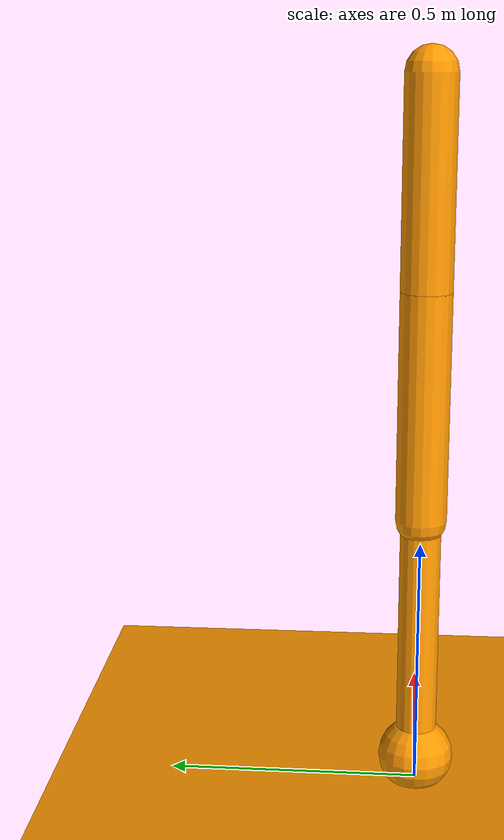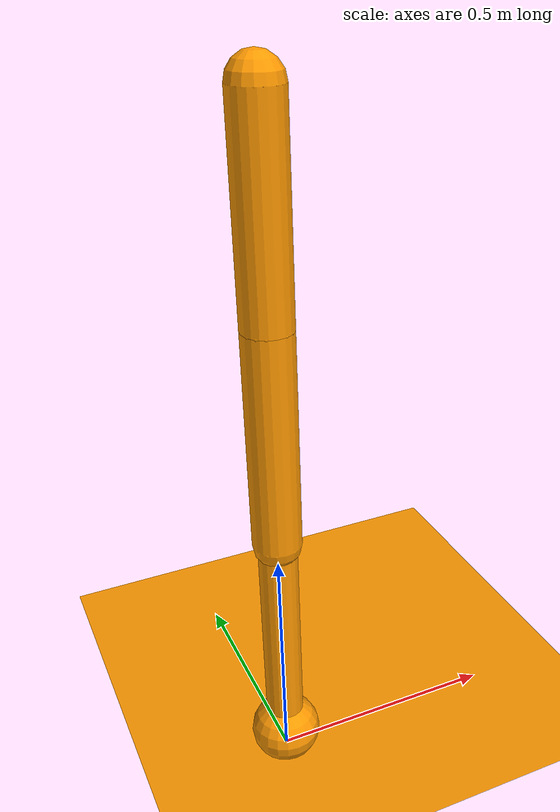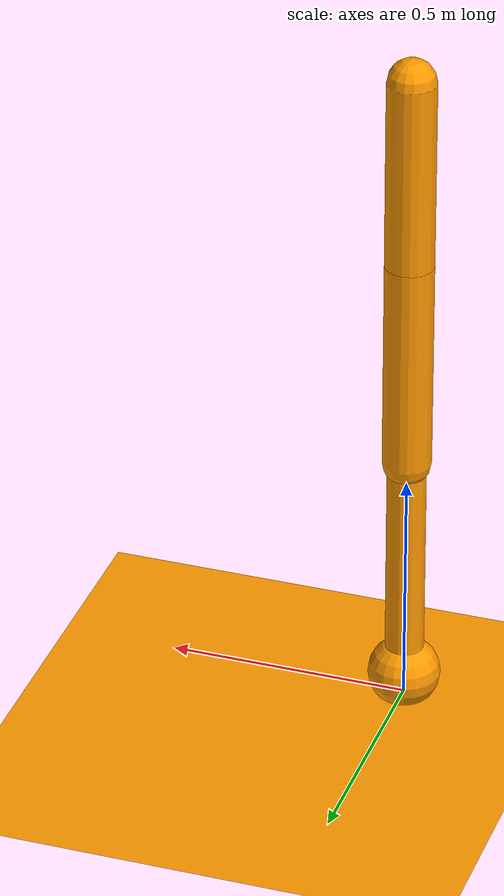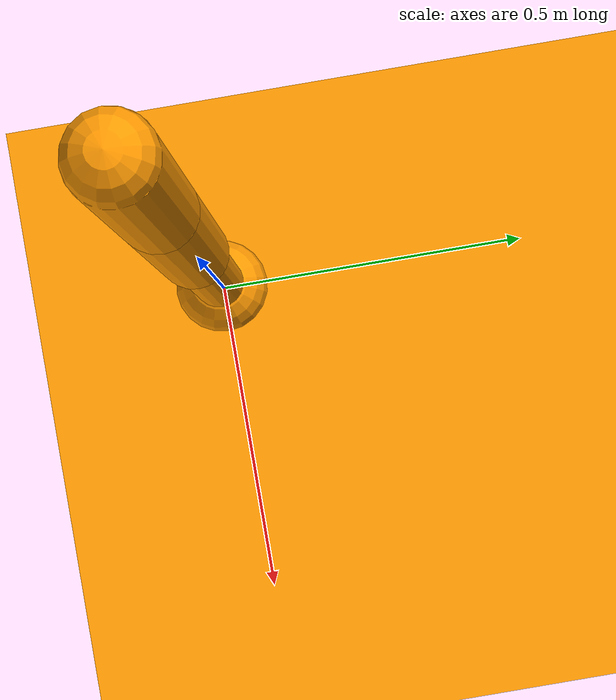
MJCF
<mujoco model="hopper">
  <compiler angle="degree" coordinate="local" inertiafromgeom="true"/>
  <default>
    <joint armature="1" damping="1" limited="true"/>
    <geom conaffinity="1" condim="6" contype="1" margin="0.001" rgba="1 0.6 0 1" solimp=".8 .8 .01" solref=".02 1"/>
    <motor ctrllimited="true" ctrlrange="-.4 .4"/>
    <site size="0.2" type="sphere" rgba="0 0 1 0"/>
  </default>
  <option timestep="0.005"/>

  <worldbody>
    <geom name="floor" size="5 5 0.1" type="plane" condim="6"/>
    <body name="robot" pos="0 0 1.2">
      <site name="robot" rgba="1 0 0 0"/>
      <camera name="vision" pos=".125 0 .2" xyaxes="0 -1 0 .4 0 1" fovy="100"/>
      <joint armature="0" axis="1 0 0" damping="10" limited="false" name="rootx" pos="0 0 0" stiffness="0" type="slide"/>
      <joint armature="0" axis="0 0 1" damping="1" limited="false" name="rootz" pos="0 0 0" stiffness="0.1" type="hinge"/>
      <joint armature="0" axis="0 1 0" damping="10" limited="false" name="rooty" pos="0 0 0" stiffness="0" type="slide"/>
      <geom friction="0.9" fromto="0 0 0.2 0 0 -0.2" name="robot_geom" size="0.05" type="capsule" />
      <body name="thigh" pos="0 0 -0.2">
        <joint armature="0.01" axis="1 0 0" damping="5" name="hip_x" pos="0 0 0" range="-20 20" stiffness="10" type="hinge"/>
        <joint armature="0.01" axis="0 0 1" damping="5" name="hip_z" pos="0 0 0" range="-20 20" stiffness="10" type="hinge"/>
        <joint armature="0.01" axis="0 1 0" damping="5" name="hip_y" pos="0 0 0" range="-20 20" stiffness="10" type="hinge"/>
        <joint axis="0 -1 0" name="thigh_joint" pos="0 0 0" range="-150 0" type="hinge"/>
        <geom friction="0.9" fromto="0 0 0 0 0 -0.45" name="thigh_geom" size="0.05" type="capsule"/>
        <body name="leg" pos="0 0 -0.7">
          <joint axis="0 -1 0" name="leg_joint" pos="0 0 0.25" range="-100 0" type="hinge"/>
          <geom friction="0.9" fromto="0 0 0.25 0 0 -0.25" name="leg_geom" size="0.04" type="capsule"/>
          <body name="foot" pos="0.13 0 -0.35">
            <joint axis="0 -1 0" name="foot_joint" pos="-0.13 0 0.1" range="-45 45" type="hinge"/>
            <geom name="foot_geom" pos="-0.13 0 0.1" size="0.075" type="sphere" user="0"/>
            <site name="foot" pos="-0.13 0 0.1"/>
          </body>
        </body>
      </body>
    </body>
  </worldbody>
  <sensor>
        <touch site="foot" name="touch_foot"/>

        <jointpos joint="hip_x" name="jointpos_hip_x"/>
        <jointpos joint="hip_z" name="jointpos_hip_z"/>
        <jointpos joint="hip_y" name="jointpos_hip_y"/>
        <jointpos joint="thigh_joint" name="jointpos_thigh"/>
        <jointpos joint="leg_joint" name="jointpos_leg"/>
        <jointpos joint="foot_joint" name="jointpos_foot"/>

        <jointvel joint="hip_x" name="jointvel_hip_x"/>
        <jointvel joint="hip_z" name="jointvel_hip_z"/>
        <jointvel joint="hip_y" name="jointvel_hip_y"/>
        <jointvel joint="thigh_joint" name="jointvel_thigh"/>
        <jointvel joint="leg_joint" name="jointvel_leg"/>
        <jointvel joint="foot_joint" name="jointvel_foot"/>
        <!-- Used for observation -->
        <accelerometer site="robot" name="accelerometer"/>
        <velocimeter site="robot" name="velocimeter"/>
        <gyro site="robot" name="gyro"/>
        <magnetometer site="robot" name="magnetometer"/>

        <!-- Used for intrinsic constraints -->
        <subtreecom body="robot" name="subtreecom"/>
        <subtreelinvel body="robot" name="subtreelinvel"/>
        <subtreeangmom body="robot" name="subtreeangmom"/>
   </sensor>
   <actuator>
    <motor gear="20" joint="hip_x" name="hip_x"/>
    <motor gear="20" joint="hip_z" name="hip_z"/>
    <motor gear="20" joint="hip_y" name="hip_y"/>
    <motor ctrllimited="true" ctrlrange="-1.0 1.0" gear="50.0" joint="thigh_joint"/>
    <motor ctrllimited="true" ctrlrange="-1.0 1.0" gear="20.0" joint="leg_joint"/>
    <motor ctrllimited="true" ctrlrange="-1.0 1.0" gear="20.0" joint="foot_joint"/>
   </actuator>
</mujoco>
